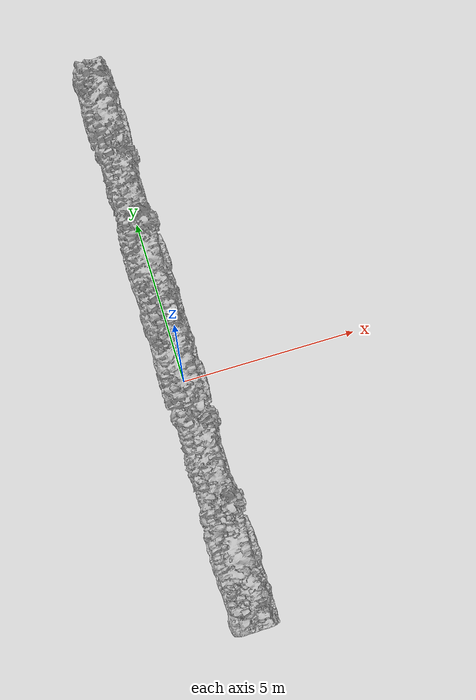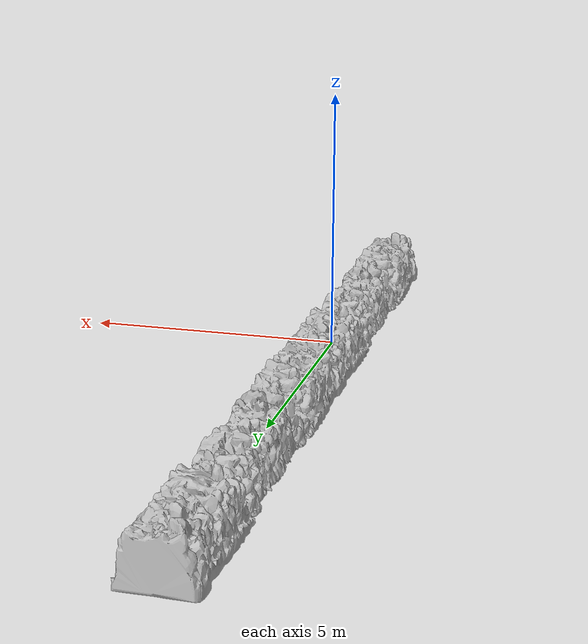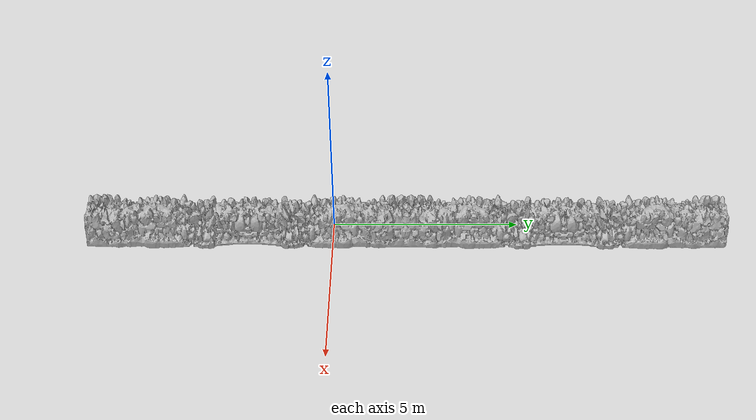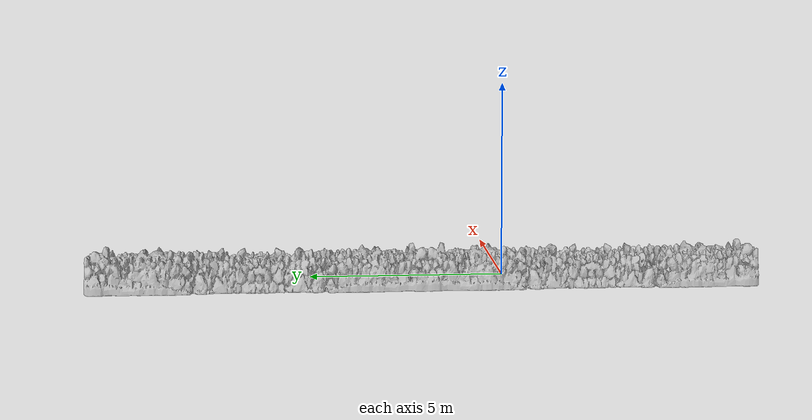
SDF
<?xml version="1.0" ?>
<sdf version="1.6">
  <model name="stone_wall02">
    <static>true</static>
    <link name="link">
      <collision name="collision">
        <pose>0 0 0 1.57079632679489661923 0 1.57079632679489661923</pose>
        <geometry>
          <mesh>
            <uri>model://Stone_Wall/source/Dunga.obj</uri>
            <scale>0.2 0.4 0.3</scale>
          </mesh>
        </geometry>
      </collision>
      <visual name="visual">
        <pose>0 0 0 1.57 0 1.57079632679489661923</pose>
        <geometry>
          <mesh>
            <uri>model://Stone_Wall/source/Dunga.obj</uri>
            <scale>0.2 0.4 0.3</scale>
          </mesh>
        </geometry>
        <material>
          <script>
            <uri>model://Dunga.mtl</uri>
          </script>
        </material>
      </visual>
    </link>
  </model>
</sdf>
